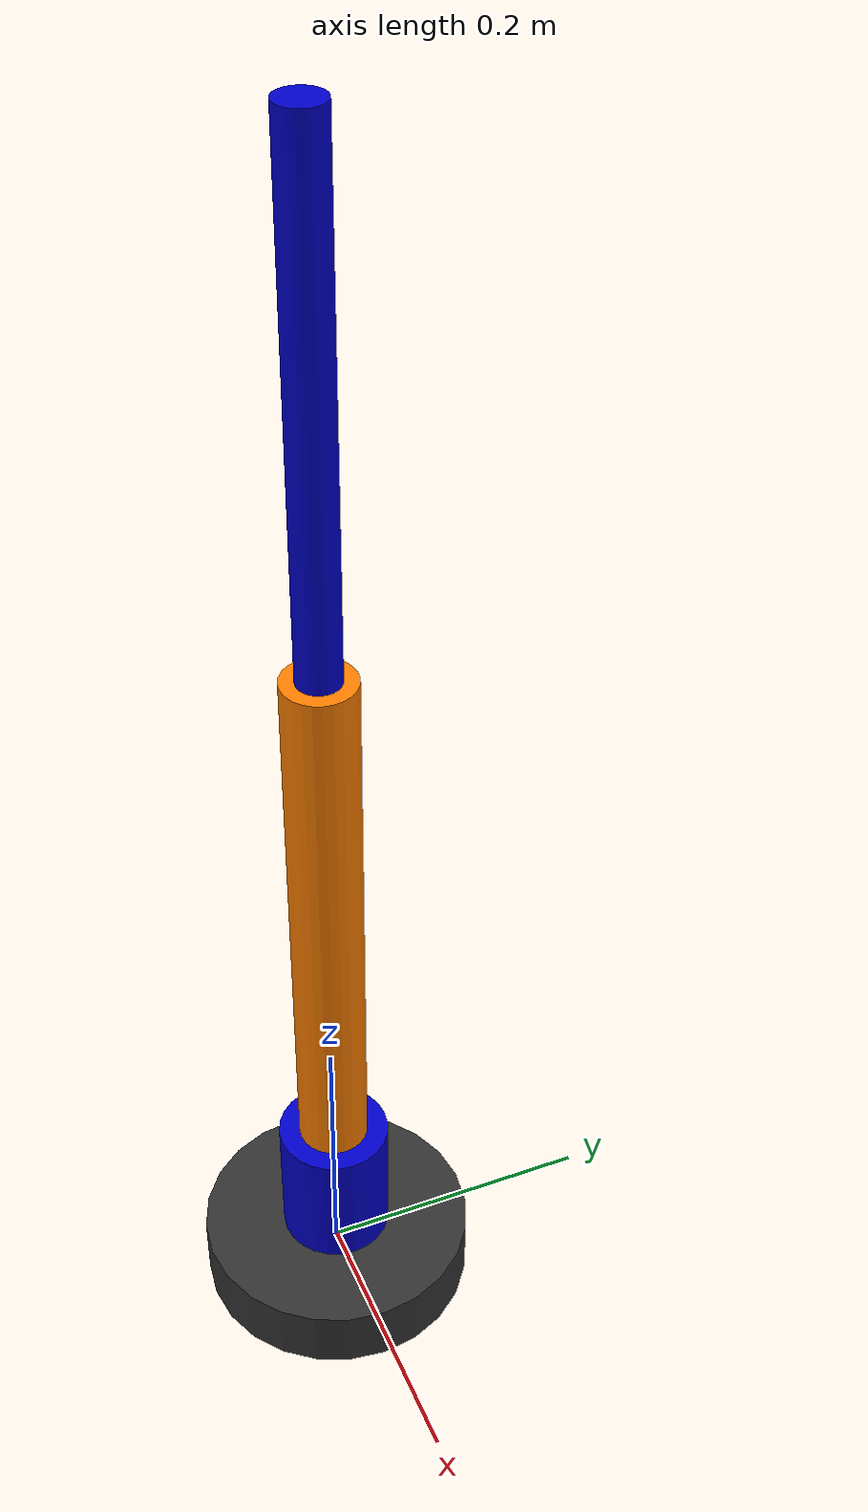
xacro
<?xml version="1.0"?>
<robot xmlns:xacro="http://www.ros.org/wiki/xacro" name="my_arm">
    <xacro:arg name="initial_positions_file" default="initial_positions.yaml" />
    <xacro:arg name="use_mock_hardware" default="false" />
    <!-- ESP32 serial port. by-id path stays the same whichever ttyUSBn it gets. -->
    <xacro:arg name="serial_port"
               default="/dev/serial/by-id/usb-Silicon_Labs_CP2102_USB_to_UART_Bridge_Controller_0001-if00-port0" />

    <!-- Import my_arm urdf file -->
    <xacro:include filename="$(find my_arm_description)/urdf/my_arm.urdf.xacro" />

    <!-- Import control_xacro -->
    <xacro:include filename="my_arm.ros2_control.xacro" />

    <xacro:my_arm_ros2_control
        name="FakeSystem"
        initial_positions_file="$(arg initial_positions_file)"
        use_mock_hardware="$(arg use_mock_hardware)"
        serial_port="$(arg serial_port)"/>

</robot>

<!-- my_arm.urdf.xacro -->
<robot xmlns:xacro="http://www.ros.org/wiki/xacro" name="my_arm">
  <!-- Kinematics only. ros2_control (mock or ESP32) is added by
       my_arm_moveit_config/config/my_arm.ros2_control.xacro -->

  <material name="blue">
    <color rgba="0 0 0.8 1"/>
  </material>
  <material name="grey">
    <color rgba="0.2 0.2 0.2 1"/>
  </material>
  <material name="orange">
    <color rgba="1 0.5 0 1"/>
  </material>

  <link name="base_link">
    <visual>
      <geometry>
        <cylinder length="0.05" radius="0.1"/>
      </geometry>
      <material name="grey"/>
    </visual>
    <collision>
      <geometry>
        <cylinder length="0.05" radius="0.1"/>
      </geometry>
    </collision>
  </link>

  <link name="link_1">
    <visual>
      <geometry>
        <cylinder length="0.1" radius="0.04"/>
      </geometry>
      <origin xyz="0 0 0.05" rpy="0 0 0"/>
      <material name="blue"/>
    </visual>
    <collision>
      <geometry>
        <cylinder length="0.1" radius="0.04"/>
      </geometry>
      <origin xyz="0 0 0.05" rpy="0 0 0"/>
    </collision>
  </link>

  <link name="link_2">
    <visual>
      <geometry>
        <cylinder length="0.405" radius="0.025"/>
      </geometry>
      <origin xyz="0 0 0.2025" rpy="0 0 0"/>
      <material name="orange"/>
    </visual>
    <collision>
      <geometry>
        <cylinder length="0.405" radius="0.025"/>
      </geometry>
      <origin xyz="0 0 0.2025" rpy="0 0 0"/>
    </collision>
  </link>

  <link name="link_3">
    <visual>
      <geometry>
        <cylinder length="0.345" radius="0.015"/>
      </geometry>
      <origin xyz="0 0 0.1725" rpy="0 0 0"/>
      <material name="blue"/>
    </visual>
    <collision>
      <geometry>
        <cylinder length="0.345" radius="0.015"/>
      </geometry>
      <origin xyz="0 0 0.1725" rpy="0 0 0"/>
    </collision>
  </link>

  <!-- Tip of the forearm (no wrist yet). Used as the end effector for IK / Servo. -->
  <link name="ee_link"/>

  <joint name="joint_1" type="continuous">
    <parent link="base_link"/>
    <child link="link_1"/>
    <origin xyz="0 0 0.025" rpy="0 0 0"/>
    <axis xyz="0 0 1"/>
    <limit effort="100" velocity="1.0"/>
  </joint>

  <joint name="joint_2" type="revolute">
    <parent link="link_1"/>
    <child link="link_2"/>
    <origin xyz="0 0 0.1" rpy="0 0 0"/>
    <axis xyz="0 1 0"/>
    <limit lower="-1.570796" upper="1.221730" effort="200" velocity="0.3"/>
  </joint>

  <joint name="joint_3" type="revolute">
    <parent link="link_2"/>
    <child link="link_3"/>
    <origin xyz="0 0 0.405" rpy="0 0 0"/>
    <axis xyz="0 1 0"/>
    <limit lower="-2.792527" upper="0.0" effort="100" velocity="0.3"/>
  </joint>

  <joint name="ee_joint" type="fixed">
    <parent link="link_3"/>
    <child link="ee_link"/>
    <origin xyz="0 0 0.345" rpy="0 0 0"/>
  </joint>

</robot>
